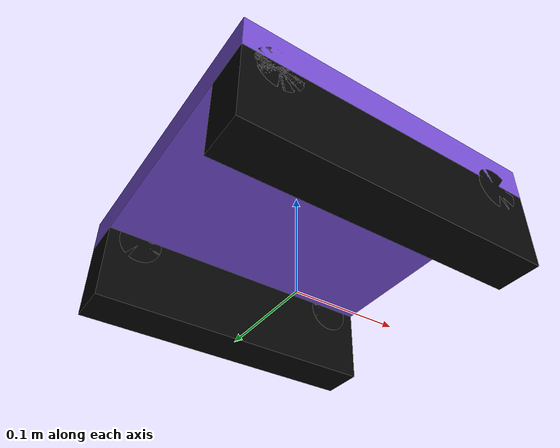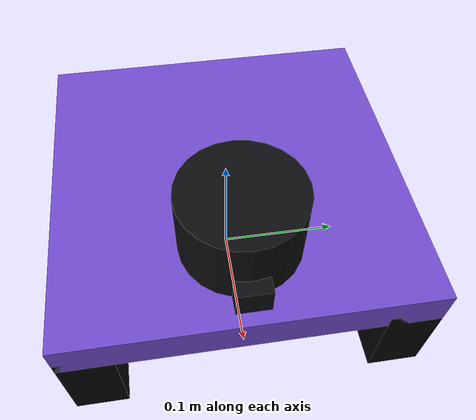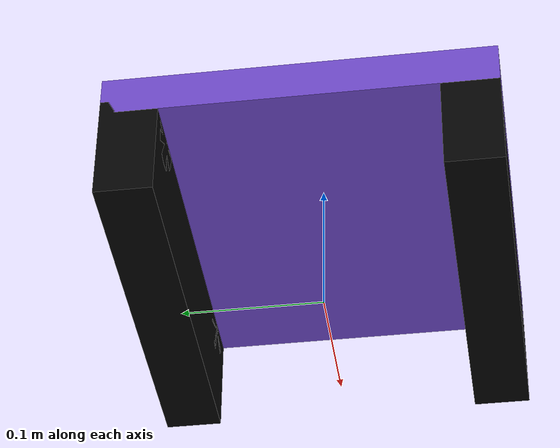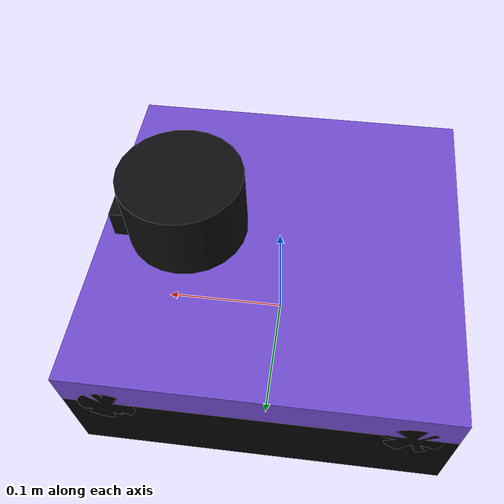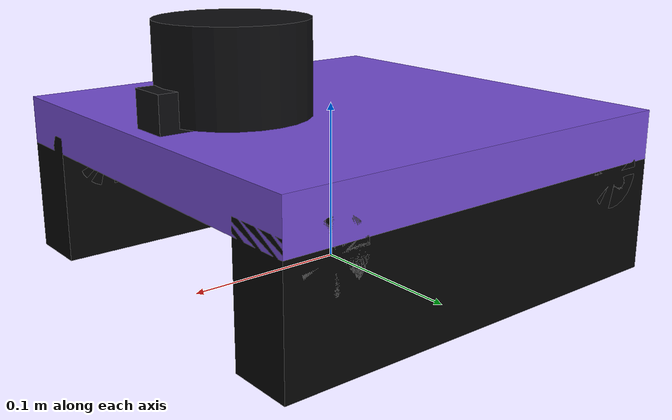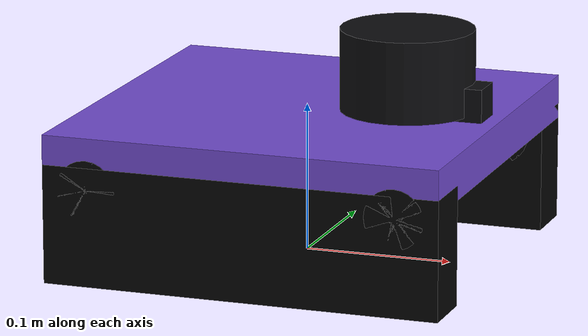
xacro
<?xml version="1.0"?>
<robot name="tracked_robot" xmlns:xacro="http://www.ros.org/wiki/xacro">
  <xacro:include filename="$(find tracked_robot_description)/urdf/common_inertials.xacro"/>
  <xacro:include filename="$(find tracked_robot_description)/urdf/materials.xacro"/>
  <xacro:include filename="$(find tracked_robot_description)/urdf/chassis.xacro"/>
  <xacro:include filename="$(find tracked_robot_description)/urdf/sensors.xacro"/>
  <xacro:include filename="$(find tracked_robot_description)/urdf/gazebo_plugins.xacro"/>

  <link name="base_footprint"/>

  <xacro:tracked_chassis parent="base_footprint"/>
  <xacro:sensor_stack parent="chassis_link"/>
  <xacro:gazebo_extensions/>
</robot>

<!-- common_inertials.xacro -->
<robot xmlns:xacro="http://www.ros.org/wiki/xacro">
  <xacro:macro name="box_inertial" params="mass x y z *origin">
    <inertial>
      <xacro:insert_block name="origin"/>
      <mass value="${mass}"/>
      <inertia
        ixx="${mass * (y * y + z * z) / 12.0}"
        ixy="0.0"
        ixz="0.0"
        iyy="${mass * (x * x + z * z) / 12.0}"
        iyz="0.0"
        izz="${mass * (x * x + y * y) / 12.0}"/>
    </inertial>
  </xacro:macro>

  <xacro:macro name="cylinder_inertial_z" params="mass radius length *origin">
    <inertial>
      <xacro:insert_block name="origin"/>
      <mass value="${mass}"/>
      <inertia
        ixx="${mass * (3.0 * radius * radius + length * length) / 12.0}"
        ixy="0.0"
        ixz="0.0"
        iyy="${mass * (3.0 * radius * radius + length * length) / 12.0}"
        iyz="0.0"
        izz="${mass * radius * radius / 2.0}"/>
    </inertial>
  </xacro:macro>

  <xacro:macro name="cylinder_inertial_y" params="mass radius length *origin">
    <inertial>
      <xacro:insert_block name="origin"/>
      <mass value="${mass}"/>
      <inertia
        ixx="${mass * (3.0 * radius * radius + length * length) / 12.0}"
        ixy="0.0"
        ixz="0.0"
        iyy="${mass * radius * radius / 2.0}"
        iyz="0.0"
        izz="${mass * (3.0 * radius * radius + length * length) / 12.0}"/>
    </inertial>
  </xacro:macro>
</robot>

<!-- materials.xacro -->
<robot xmlns:xacro="http://www.ros.org/wiki/xacro">
  <material name="mat_chassis">
    <color rgba="0.45 0.30 0.82 1.0"/>
  </material>

  <material name="mat_track">
    <color rgba="0.02 0.02 0.02 1.0"/>
  </material>

  <material name="mat_sensor">
    <color rgba="0.05 0.05 0.06 1.0"/>
  </material>

  <material name="mat_arm">
    <color rgba="0.04 0.04 0.05 1.0"/>
  </material>

  <material name="mat_tool">
    <color rgba="0.55 0.58 0.60 1.0"/>
  </material>

  <material name="mat_servo_purple">
    <color rgba="0.42 0.29 0.86 1.0"/>
  </material>

  <material name="mat_gripper_cyan">
    <color rgba="0.28 0.78 0.86 1.0"/>
  </material>

  <material name="mat_metal">
    <color rgba="0.72 0.72 0.68 1.0"/>
  </material>
</robot>

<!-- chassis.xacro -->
<robot xmlns:xacro="http://www.ros.org/wiki/xacro">
  <xacro:property name="chassis_length" value="0.27"/>
  <xacro:property name="chassis_width" value="0.27"/>
  <xacro:property name="chassis_height" value="0.03"/>
  <xacro:property name="chassis_mass" value="2.5"/>
  <xacro:property name="chassis_top_z" value="0.10"/>
  <xacro:property name="chassis_center_z" value="${chassis_top_z - chassis_height / 2.0}"/>

  <xacro:property name="track_length" value="0.27"/>
  <xacro:property name="track_width" value="0.04"/>
  <xacro:property name="track_height" value="0.08"/>
  <xacro:property name="track_mass" value="0.8"/>
  <xacro:property name="track_center_distance" value="0.23"/>
  <xacro:property name="track_y" value="${track_center_distance / 2.0}"/>
  <xacro:property name="track_z" value="${track_height / 2.0 - chassis_center_z}"/>

  <xacro:property name="drive_sprocket_radius" value="0.02"/>
  <xacro:property name="drive_sprocket_width" value="0.04"/>
  <xacro:property name="drive_sprocket_mass" value="0.18"/>
  <xacro:property name="drive_sprocket_x" value="${chassis_length / 2.0 - 0.03}"/>
  <xacro:property name="rear_idler_x" value="${-chassis_length / 2.0 + 0.03}"/>
  <xacro:property name="drive_sprocket_z_abs" value="0.065"/>
  <xacro:property name="drive_sprocket_z" value="${drive_sprocket_z_abs - chassis_center_z}"/>

  <xacro:property name="road_wheel_radius" value="0.02"/>
  <xacro:property name="road_wheel_width" value="0.035"/>
  <xacro:property name="road_wheel_mass" value="0.10"/>
  <xacro:property name="road_wheel_z" value="${road_wheel_radius - chassis_center_z}"/>
  <xacro:property name="suspension_strut_z" value="${0.055 - chassis_center_z}"/>

  <xacro:property name="virtual_drive_radius" value="${track_height / 2.0}"/>
  <xacro:property name="virtual_drive_width" value="${track_width}"/>
  <xacro:property name="virtual_drive_mass" value="0.05"/>
  <xacro:property name="virtual_drive_z" value="${virtual_drive_radius - chassis_center_z}"/>

  <xacro:macro name="visible_wheel" params="name radius width mass">
    <link name="${name}">
      <visual>
        <origin xyz="0 0 0" rpy="${pi / 2.0} 0 0"/>
        <geometry>
          <cylinder radius="${radius}" length="${width}"/>
        </geometry>
        <material name="mat_track"/>
      </visual>
      <xacro:cylinder_inertial_y mass="${mass}" radius="${radius}" length="${width}">
        <origin xyz="0 0 0" rpy="0 0 0"/>
      </xacro:cylinder_inertial_y>
    </link>
  </xacro:macro>

  <xacro:macro name="passive_road_wheel" params="name">
    <link name="${name}">
      <visual>
        <origin xyz="0 0 0" rpy="${pi / 2.0} 0 0"/>
        <geometry>
          <cylinder radius="${road_wheel_radius}" length="${road_wheel_width}"/>
        </geometry>
        <material name="mat_track"/>
      </visual>
      <collision>
        <origin xyz="0 0 0" rpy="${pi / 2.0} 0 0"/>
        <geometry>
          <cylinder radius="${road_wheel_radius}" length="${road_wheel_width}"/>
        </geometry>
      </collision>
      <xacro:cylinder_inertial_y mass="${road_wheel_mass}" radius="${road_wheel_radius}" length="${road_wheel_width}">
        <origin xyz="0 0 0" rpy="0 0 0"/>
      </xacro:cylinder_inertial_y>
    </link>
  </xacro:macro>

  <xacro:macro name="virtual_drive_wheel" params="name">
    <link name="${name}">
      <collision>
        <origin xyz="0 0 0" rpy="${pi / 2.0} 0 0"/>
        <geometry>
          <cylinder radius="${virtual_drive_radius}" length="${virtual_drive_width}"/>
        </geometry>
      </collision>
      <xacro:cylinder_inertial_y mass="${virtual_drive_mass}" radius="${virtual_drive_radius}" length="${virtual_drive_width}">
        <origin xyz="0 0 0" rpy="0 0 0"/>
      </xacro:cylinder_inertial_y>
    </link>
  </xacro:macro>

  <xacro:macro name="suspension_strut_group" params="name side_y">
    <link name="${name}">
      <visual>
        <origin xyz="-0.09 ${side_y} ${suspension_strut_z}" rpy="0 0 0"/>
        <geometry>
          <box size="0.012 0.010 0.035"/>
        </geometry>
        <material name="mat_tool"/>
      </visual>
      <visual>
        <origin xyz="-0.03 ${side_y} ${suspension_strut_z}" rpy="0 0 0"/>
        <geometry>
          <box size="0.012 0.010 0.035"/>
        </geometry>
        <material name="mat_tool"/>
      </visual>
      <visual>
        <origin xyz="0.03 ${side_y} ${suspension_strut_z}" rpy="0 0 0"/>
        <geometry>
          <box size="0.012 0.010 0.035"/>
        </geometry>
        <material name="mat_tool"/>
      </visual>
      <visual>
        <origin xyz="0.09 ${side_y} ${suspension_strut_z}" rpy="0 0 0"/>
        <geometry>
          <box size="0.012 0.010 0.035"/>
        </geometry>
        <material name="mat_tool"/>
      </visual>
      <xacro:box_inertial mass="0.08" x="0.20" y="0.01" z="0.035">
        <origin xyz="0 ${side_y} ${suspension_strut_z}" rpy="0 0 0"/>
      </xacro:box_inertial>
    </link>
  </xacro:macro>

  <xacro:macro name="tracked_chassis" params="parent">
    <link name="chassis_link">
      <visual>
        <origin xyz="0 0 0" rpy="0 0 0"/>
        <geometry>
          <box size="${chassis_length} ${chassis_width} ${chassis_height}"/>
        </geometry>
        <material name="mat_chassis"/>
      </visual>
      <collision>
        <origin xyz="0 0 0" rpy="0 0 0"/>
        <geometry>
          <box size="${chassis_length} ${chassis_width} ${chassis_height}"/>
        </geometry>
      </collision>
      <xacro:box_inertial mass="${chassis_mass}" x="${chassis_length}" y="${chassis_width}" z="${chassis_height}">
        <origin xyz="0 0 0" rpy="0 0 0"/>
      </xacro:box_inertial>
    </link>

    <joint name="base_footprint_to_chassis_joint" type="fixed">
      <parent link="${parent}"/>
      <child link="chassis_link"/>
      <origin xyz="0 0 ${chassis_center_z}" rpy="0 0 0"/>
    </joint>

    <link name="left_track_link">
      <visual>
        <origin xyz="0 0 0" rpy="0 0 0"/>
        <geometry>
          <box size="${track_length} ${track_width} ${track_height}"/>
        </geometry>
        <material name="mat_track"/>
      </visual>
      <xacro:box_inertial mass="${track_mass}" x="${track_length}" y="${track_width}" z="${track_height}">
        <origin xyz="0 0 0" rpy="0 0 0"/>
      </xacro:box_inertial>
    </link>

    <joint name="left_track_fixed_joint" type="fixed">
      <parent link="chassis_link"/>
      <child link="left_track_link"/>
      <origin xyz="0 ${track_y} ${track_z}" rpy="0 0 0"/>
    </joint>

    <link name="right_track_link">
      <visual>
        <origin xyz="0 0 0" rpy="0 0 0"/>
        <geometry>
          <box size="${track_length} ${track_width} ${track_height}"/>
        </geometry>
        <material name="mat_track"/>
      </visual>
      <xacro:box_inertial mass="${track_mass}" x="${track_length}" y="${track_width}" z="${track_height}">
        <origin xyz="0 0 0" rpy="0 0 0"/>
      </xacro:box_inertial>
    </link>

    <joint name="right_track_fixed_joint" type="fixed">
      <parent link="chassis_link"/>
      <child link="right_track_link"/>
      <origin xyz="0 ${-track_y} ${track_z}" rpy="0 0 0"/>
    </joint>

    <xacro:suspension_strut_group name="left_suspension_struts_link" side_y="${track_y}"/>
    <joint name="left_suspension_struts_fixed_joint" type="fixed">
      <parent link="chassis_link"/>
      <child link="left_suspension_struts_link"/>
      <origin xyz="0 0 0" rpy="0 0 0"/>
    </joint>

    <xacro:suspension_strut_group name="right_suspension_struts_link" side_y="${-track_y}"/>
    <joint name="right_suspension_struts_fixed_joint" type="fixed">
      <parent link="chassis_link"/>
      <child link="right_suspension_struts_link"/>
      <origin xyz="0 0 0" rpy="0 0 0"/>
    </joint>

    <xacro:visible_wheel
      name="left_drive_sprocket_link"
      radius="${drive_sprocket_radius}"
      width="${drive_sprocket_width}"
      mass="${drive_sprocket_mass}"/>

    <joint name="left_drive_sprocket_fixed_joint" type="fixed">
      <parent link="chassis_link"/>
      <child link="left_drive_sprocket_link"/>
      <origin xyz="${drive_sprocket_x} ${track_y} ${drive_sprocket_z}" rpy="0 0 0"/>
    </joint>

    <xacro:visible_wheel
      name="left_rear_idler_link"
      radius="${drive_sprocket_radius}"
      width="${drive_sprocket_width}"
      mass="${drive_sprocket_mass}"/>

    <joint name="left_rear_idler_fixed_joint" type="fixed">
      <parent link="chassis_link"/>
      <child link="left_rear_idler_link"/>
      <origin xyz="${rear_idler_x} ${track_y} ${drive_sprocket_z}" rpy="0 0 0"/>
    </joint>

    <xacro:passive_road_wheel name="left_road_wheel_1_link"/>
    <joint name="left_road_wheel_1_joint" type="continuous">
      <parent link="chassis_link"/>
      <child link="left_road_wheel_1_link"/>
      <origin xyz="-0.09 ${track_y} ${road_wheel_z}" rpy="0 0 0"/>
      <axis xyz="0 1 0"/>
      <dynamics damping="0.02" friction="0.0"/>
    </joint>

    <xacro:passive_road_wheel name="left_road_wheel_2_link"/>
    <joint name="left_road_wheel_2_joint" type="continuous">
      <parent link="chassis_link"/>
      <child link="left_road_wheel_2_link"/>
      <origin xyz="-0.03 ${track_y} ${road_wheel_z}" rpy="0 0 0"/>
      <axis xyz="0 1 0"/>
      <dynamics damping="0.02" friction="0.0"/>
    </joint>

    <xacro:passive_road_wheel name="left_road_wheel_3_link"/>
    <joint name="left_road_wheel_3_joint" type="continuous">
      <parent link="chassis_link"/>
      <child link="left_road_wheel_3_link"/>
      <origin xyz="0.03 ${track_y} ${road_wheel_z}" rpy="0 0 0"/>
      <axis xyz="0 1 0"/>
      <dynamics damping="0.02" friction="0.0"/>
    </joint>

    <xacro:passive_road_wheel name="left_road_wheel_4_link"/>
    <joint name="left_road_wheel_4_joint" type="continuous">
      <parent link="chassis_link"/>
      <child link="left_road_wheel_4_link"/>
      <origin xyz="0.09 ${track_y} ${road_wheel_z}" rpy="0 0 0"/>
      <axis xyz="0 1 0"/>
      <dynamics damping="0.02" friction="0.0"/>
    </joint>

    <xacro:virtual_drive_wheel name="left_virtual_drive_wheel_link"/>

    <joint name="left_track_joint" type="continuous">
      <parent link="chassis_link"/>
      <child link="left_virtual_drive_wheel_link"/>
      <origin xyz="0 ${track_y} ${virtual_drive_z}" rpy="0 0 0"/>
      <axis xyz="0 1 0"/>
      <limit effort="40.0" velocity="30.0"/>
      <dynamics damping="0.2" friction="0.1"/>
    </joint>

    <xacro:visible_wheel
      name="right_drive_sprocket_link"
      radius="${drive_sprocket_radius}"
      width="${drive_sprocket_width}"
      mass="${drive_sprocket_mass}"/>

    <joint name="right_drive_sprocket_fixed_joint" type="fixed">
      <parent link="chassis_link"/>
      <child link="right_drive_sprocket_link"/>
      <origin xyz="${drive_sprocket_x} ${-track_y} ${drive_sprocket_z}" rpy="0 0 0"/>
    </joint>

    <xacro:visible_wheel
      name="right_rear_idler_link"
      radius="${drive_sprocket_radius}"
      width="${drive_sprocket_width}"
      mass="${drive_sprocket_mass}"/>

    <joint name="right_rear_idler_fixed_joint" type="fixed">
      <parent link="chassis_link"/>
      <child link="right_rear_idler_link"/>
      <origin xyz="${rear_idler_x} ${-track_y} ${drive_sprocket_z}" rpy="0 0 0"/>
    </joint>

    <xacro:passive_road_wheel name="right_road_wheel_1_link"/>
    <joint name="right_road_wheel_1_joint" type="continuous">
      <parent link="chassis_link"/>
      <child link="right_road_wheel_1_link"/>
      <origin xyz="-0.09 ${-track_y} ${road_wheel_z}" rpy="0 0 0"/>
      <axis xyz="0 1 0"/>
      <dynamics damping="0.02" friction="0.0"/>
    </joint>

    <xacro:passive_road_wheel name="right_road_wheel_2_link"/>
    <joint name="right_road_wheel_2_joint" type="continuous">
      <parent link="chassis_link"/>
      <child link="right_road_wheel_2_link"/>
      <origin xyz="-0.03 ${-track_y} ${road_wheel_z}" rpy="0 0 0"/>
      <axis xyz="0 1 0"/>
      <dynamics damping="0.02" friction="0.0"/>
    </joint>

    <xacro:passive_road_wheel name="right_road_wheel_3_link"/>
    <joint name="right_road_wheel_3_joint" type="continuous">
      <parent link="chassis_link"/>
      <child link="right_road_wheel_3_link"/>
      <origin xyz="0.03 ${-track_y} ${road_wheel_z}" rpy="0 0 0"/>
      <axis xyz="0 1 0"/>
      <dynamics damping="0.02" friction="0.0"/>
    </joint>

    <xacro:passive_road_wheel name="right_road_wheel_4_link"/>
    <joint name="right_road_wheel_4_joint" type="continuous">
      <parent link="chassis_link"/>
      <child link="right_road_wheel_4_link"/>
      <origin xyz="0.09 ${-track_y} ${road_wheel_z}" rpy="0 0 0"/>
      <axis xyz="0 1 0"/>
      <dynamics damping="0.02" friction="0.0"/>
    </joint>

    <xacro:virtual_drive_wheel name="right_virtual_drive_wheel_link"/>

    <joint name="right_track_joint" type="continuous">
      <parent link="chassis_link"/>
      <child link="right_virtual_drive_wheel_link"/>
      <origin xyz="0 ${-track_y} ${virtual_drive_z}" rpy="0 0 0"/>
      <axis xyz="0 1 0"/>
      <limit effort="40.0" velocity="30.0"/>
      <dynamics damping="0.2" friction="0.1"/>
    </joint>
  </xacro:macro>
</robot>

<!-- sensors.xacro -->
<robot xmlns:xacro="http://www.ros.org/wiki/xacro">
  <xacro:property name="d435_x" value="${chassis_length / 2.0 - 0.055}"/>
  <xacro:property name="d435_z_abs" value="0.11"/>
  <xacro:property name="lidar_x" value="${chassis_length / 2.0 - 0.065}"/>
  <xacro:property name="lidar_z_abs" value="0.13"/>

  <xacro:macro name="sensor_stack" params="parent">
    <link name="lidar_link">
      <visual>
        <origin xyz="0 0 0" rpy="0 0 0"/>
        <geometry>
          <cylinder radius="0.045" length="0.055"/>
        </geometry>
        <material name="mat_sensor"/>
      </visual>
      <collision>
        <origin xyz="0 0 0" rpy="0 0 0"/>
        <geometry>
          <cylinder radius="0.045" length="0.055"/>
        </geometry>
      </collision>
      <xacro:cylinder_inertial_z mass="0.18" radius="0.045" length="0.055">
        <origin xyz="0 0 0" rpy="0 0 0"/>
      </xacro:cylinder_inertial_z>
    </link>

    <joint name="lidar_joint" type="fixed">
      <parent link="${parent}"/>
      <child link="lidar_link"/>
      <origin xyz="${lidar_x} 0 ${lidar_z_abs - chassis_center_z}" rpy="0 0 0"/>
    </joint>

    <link name="d435_link">
      <visual>
        <origin xyz="0 0 0" rpy="0 0 0"/>
        <geometry>
          <box size="0.09 0.025 0.025"/>
        </geometry>
        <material name="mat_sensor"/>
      </visual>
      <collision>
        <origin xyz="0 0 0" rpy="0 0 0"/>
        <geometry>
          <box size="0.09 0.025 0.025"/>
        </geometry>
      </collision>
      <xacro:box_inertial mass="0.08" x="0.09" y="0.025" z="0.025">
        <origin xyz="0 0 0" rpy="0 0 0"/>
      </xacro:box_inertial>
    </link>

    <joint name="d435_joint" type="fixed">
      <parent link="${parent}"/>
      <child link="d435_link"/>
      <origin xyz="${d435_x} 0 ${d435_z_abs - chassis_center_z}" rpy="0 0 0"/>
    </joint>

    <link name="d435_color_optical_frame"/>
    <joint name="d435_color_optical_joint" type="fixed">
      <parent link="d435_link"/>
      <child link="d435_color_optical_frame"/>
      <origin xyz="0 0 0" rpy="${-pi / 2.0} 0 ${-pi / 2.0}"/>
    </joint>

    <link name="d435_depth_optical_frame"/>
    <joint name="d435_depth_optical_joint" type="fixed">
      <parent link="d435_link"/>
      <child link="d435_depth_optical_frame"/>
      <origin xyz="0 0 0" rpy="${-pi / 2.0} 0 ${-pi / 2.0}"/>
    </joint>
  </xacro:macro>
</robot>
